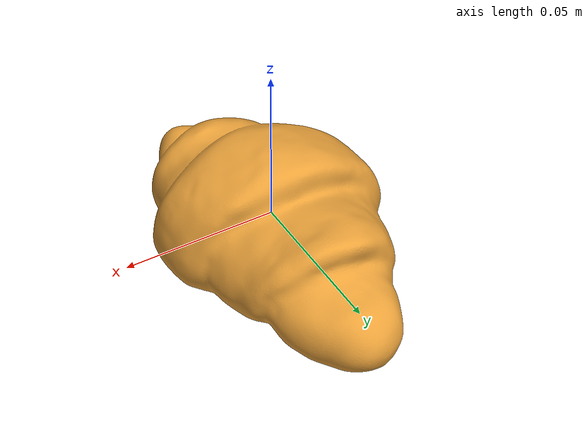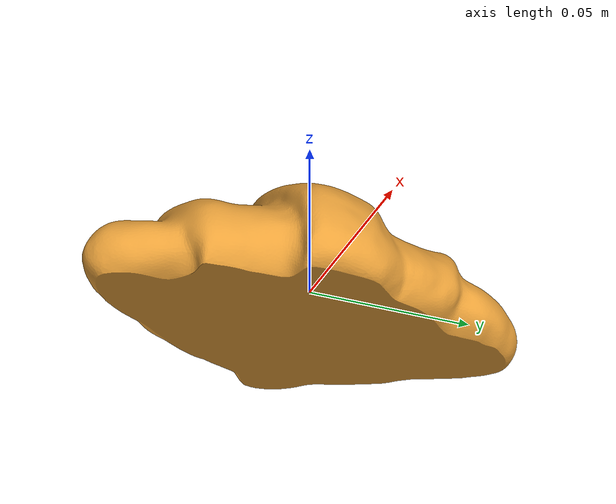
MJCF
<?xml version="1.0"?>
<mujoco model="croissant">

    <asset>

        <!-- Croissant mesh -->
        <mesh
            name="croissant_mesh"
            file="meshes/croissant.stl"
            scale="1 1 1"/>

        <!-- Material -->
        <material
            name="croissant_mat"
            rgba="0.90 0.62 0.22 1"
            specular="0.1"
            shininess="0.2"/>

    </asset>

    <worldbody>
        <body>
            <body name="object">

                <geom pos="0 0 0" mesh="croissant_mesh" type="mesh" solimp="0.998 0.998 0.001" solref="0.005 1" density="50" friction="0.95 0.3 0.1"  material="croissant_mat"  group="0" condim="4"/>
            </body>
            <!-- Required sites -->

            <site
                name="bottom_site"
                pos="0 0 -0.03"
                size="0.005"
                rgba="0 0 0 0"/>

            <site
                name="top_site"
                pos="0 0 0.03"
                size="0.005"
                rgba="0 0 0 0"/>

            <site
                name="horizontal_radius_site"
                pos="0.05 0 0"
                size="0.005"
                rgba="0 0 0 0"/>

        </body>

    </worldbody>

</mujoco>
